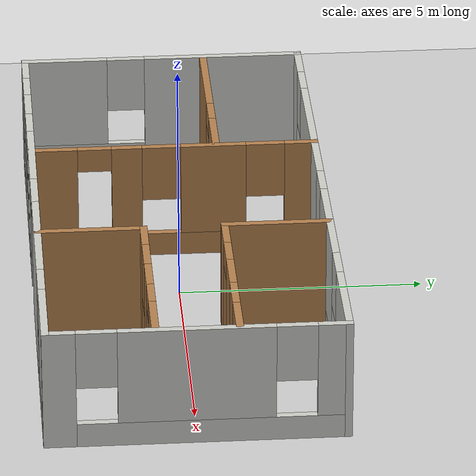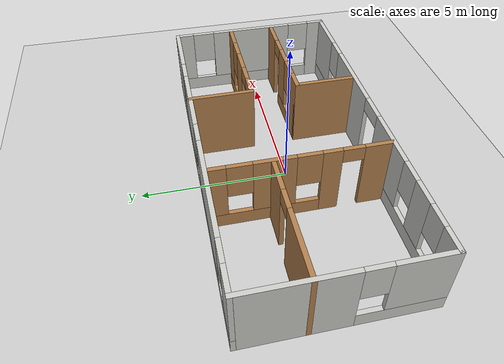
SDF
<sdf version="1.6">
 <world name="default">
  <plugin name="hello" filename="libhello.so"/>
  <light name="sun" type="directional">
   <pose>0 0 10 0 -0 0</pose>
   <diffuse>0.8 0.8 0.8 1</diffuse>
   <specular>0.2 0.2 0.2 1</specular>
   <attenuation>
    <range>1000</range>
    <constant>0.9</constant>
    <linear>0.01</linear>
    <quadratic>0.001</quadratic>
   </attenuation>
   <direction>-0.5 0.1 -0.9</direction>
  </light>
  <model name="ground_plane">
   <static>1</static>
   <link name="link">
    <collision name="collision">
     <geometry><plane><normal>0 0 1</normal><size>100 100</size></plane></geometry>
     <surface><friction><ode><mu>100</mu><mu2>50</mu2></ode></friction></surface>
    </collision>
    <visual name="visual">
     <cast_shadows>0</cast_shadows>
     <geometry><plane><normal>0 0 1</normal><size>100 100</size></plane></geometry>
     <material>
      <script><uri>file://media/materials/scripts/gazebo.material</uri><name>Gazebo/Grey</name></script>
     </material>
    </visual>
   </link>
  </model>
  <gravity>0 0 -9.8</gravity>
  <magnetic_field>6e-06 2.3e-05 -4.2e-05</magnetic_field>
  <atmosphere type="adiabatic"/>
  <physics name="default_physics" default="0" type="ode">
   <max_step_size>0.001</max_step_size>
   <real_time_factor>1</real_time_factor>
   <real_time_update_rate>1000</real_time_update_rate>
  </physics>
  <scene><ambient>0.4 0.4 0.4 1</ambient><background>0.7 0.7 0.7 1</background><shadows>1</shadows></scene>
  <spherical_coordinates>
   <surface_model>EARTH_WGS84</surface_model>
   <latitude_deg>0</latitude_deg>
   <longitude_deg>0</longitude_deg>
   <elevation>0</elevation>
   <heading_deg>0</heading_deg>
  </spherical_coordinates>
  <model name="house">
   <link name="Wall_10">
    <pose>-5.925 0 0 0 0 -1.5708</pose>
    <visual name="Wall_10_Visual_0">
     <pose>-1.31314 0 1.25 0 -0 0</pose>
     <geometry><box><size>3.37372 0.15 2.5</size></box></geometry>
     <material>
      <script><uri>file://media/materials/scripts/gazebo.material</uri><name>Gazebo/CeilingTiled</name></script>
      <ambient>1 1 1 1</ambient>
     </material>
     <meta><layer>0</layer></meta>
    </visual>
    <collision name="Wall_10_Collision_0">
     <geometry><box><size>3.37372 0.15 2.5</size></box></geometry>
     <pose>-1.31314 0 1.25 0 -0 0</pose>
    </collision>
    <visual name="Wall_10_Visual_1">
     <pose>1.68686 0 0.25 0 -0 0</pose>
     <geometry><box><size>2.62628 0.15 0.5</size></box></geometry>
     <material>
      <script><uri>file://media/materials/scripts/gazebo.material</uri><name>Gazebo/CeilingTiled</name></script>
      <ambient>1 1 1 1</ambient>
     </material>
     <meta><layer>0</layer></meta>
    </visual>
    <collision name="Wall_10_Collision_1">
     <geometry><box><size>2.62628 0.15 0.5</size></box></geometry>
     <pose>1.68686 0 0.25 0 -0 0</pose>
    </collision>
    <visual name="Wall_10_Visual_2">
     <pose>2.08686 0 1.5 0 -0 0</pose>
     <geometry><box><size>1.82628 0.15 2</size></box></geometry>
     <material>
      <script><uri>file://media/materials/scripts/gazebo.material</uri><name>Gazebo/CeilingTiled</name></script>
      <ambient>1 1 1 1</ambient>
     </material>
     <meta><layer>0</layer></meta>
    </visual>
    <collision name="Wall_10_Collision_2">
     <geometry><box><size>1.82628 0.15 2</size></box></geometry>
     <pose>2.08686 0 1.5 0 -0 0</pose>
    </collision>
    <visual name="Wall_10_Visual_3">
     <pose>0.773722 0 1.9 0 -0 0</pose>
     <geometry><box><size>0.8 0.15 1.2</size></box></geometry>
     <material>
      <script><uri>file://media/materials/scripts/gazebo.material</uri><name>Gazebo/CeilingTiled</name></script>
      <ambient>1 1 1 1</ambient>
     </material>
     <meta><layer>0</layer></meta>
    </visual>
    <collision name="Wall_10_Collision_3">
     <geometry><box><size>0.8 0.15 1.2</size></box></geometry>
     <pose>0.773722 0 1.9 0 -0 0</pose>
    </collision>
   </link>
   <link name="Wall_15">
    <pose>-1.74487 0 0 0 -0 1.5708</pose>
    <visual name="Wall_15_Visual_0">
     <pose>-2.49037 0 1.25 0 -0 0</pose>
     <geometry><box><size>1.01927 0.15 2.5</size></box></geometry>
     <material>
      <script><uri>file://media/materials/scripts/gazebo.material</uri><name>Gazebo/Wood</name></script>
      <ambient>1 1 1 1</ambient>
     </material>
     <meta><layer>0</layer></meta>
    </visual>
    <collision name="Wall_15_Collision_0">
     <geometry><box><size>1.01927 0.15 2.5</size></box></geometry>
     <pose>-2.49037 0 1.25 0 -0 0</pose>
    </collision>
    <visual name="Wall_15_Visual_1">
     <pose>-0.964878 0 1.25 0 -0 0</pose>
     <geometry><box><size>0.631715 0.15 2.5</size></box></geometry>
     <material>
      <script><uri>file://media/materials/scripts/gazebo.material</uri><name>Gazebo/Wood</name></script>
      <ambient>1 1 1 1</ambient>
     </material>
     <meta><layer>0</layer></meta>
    </visual>
    <collision name="Wall_15_Collision_1">
     <geometry><box><size>0.631715 0.15 2.5</size></box></geometry>
     <pose>-0.964878 0 1.25 0 -0 0</pose>
    </collision>
    <visual name="Wall_15_Visual_2">
     <pose>1.17549 0 0.25 0 -0 0</pose>
     <geometry><box><size>3.64902 0.15 0.5</size></box></geometry>
     <material>
      <script><uri>file://media/materials/scripts/gazebo.material</uri><name>Gazebo/Wood</name></script>
      <ambient>1 1 1 1</ambient>
     </material>
     <meta><layer>0</layer></meta>
    </visual>
    <collision name="Wall_15_Collision_2">
     <geometry><box><size>3.64902 0.15 0.5</size></box></geometry>
     <pose>1.17549 0 0.25 0 -0 0</pose>
    </collision>
    <visual name="Wall_15_Visual_3">
     <pose>0.826618 0 1.5 0 -0 0</pose>
     <geometry><box><size>1.35128 0.15 2</size></box></geometry>
     <material>
      <script><uri>file://media/materials/scripts/gazebo.material</uri><name>Gazebo/Wood</name></script>
      <ambient>1 1 1 1</ambient>
     </material>
     <meta><layer>0</layer></meta>
    </visual>
    <collision name="Wall_15_Collision_3">
     <geometry><box><size>1.35128 0.15 2</size></box></geometry>
     <pose>0.826618 0 1.5 0 -0 0</pose>
    </collision>
    <visual name="Wall_15_Visual_4">
     <pose>2.65113 0 1.5 0 -0 0</pose>
     <geometry><box><size>0.697743 0.15 2</size></box></geometry>
     <material>
      <script><uri>file://media/materials/scripts/gazebo.material</uri><name>Gazebo/Wood</name></script>
      <ambient>1 1 1 1</ambient>
     </material>
     <meta><layer>0</layer></meta>
    </visual>
    <collision name="Wall_15_Collision_4">
     <geometry><box><size>0.697743 0.15 2</size></box></geometry>
     <pose>2.65113 0 1.5 0 -0 0</pose>
    </collision>
    <visual name="Wall_15_Visual_5">
     <pose>-0.24902 0 1.9 0 -0 0</pose>
     <geometry><box><size>0.8 0.15 1.2</size></box></geometry>
     <material>
      <script><uri>file://media/materials/scripts/gazebo.material</uri><name>Gazebo/Wood</name></script>
      <ambient>1 1 1 1</ambient>
     </material>
     <meta><layer>0</layer></meta>
    </visual>
    <collision name="Wall_15_Collision_5">
     <geometry><box><size>0.8 0.15 1.2</size></box></geometry>
     <pose>-0.24902 0 1.9 0 -0 0</pose>
    </collision>
    <visual name="Wall_15_Visual_6">
     <pose>1.90226 0 1.9 0 -0 0</pose>
     <geometry><box><size>0.8 0.15 1.2</size></box></geometry>
     <material>
      <script><uri>file://media/materials/scripts/gazebo.material</uri><name>Gazebo/Wood</name></script>
      <ambient>1 1 1 1</ambient>
     </material>
     <meta><layer>0</layer></meta>
    </visual>
    <collision name="Wall_15_Collision_6">
     <geometry><box><size>0.8 0.15 1.2</size></box></geometry>
     <pose>1.90226 0 1.9 0 -0 0</pose>
    </collision>
    <visual name="Wall_15_Visual_7">
     <pose>-1.63074 0 2.25 0 -0 0</pose>
     <geometry><box><size>0.7 0.15 0.5</size></box></geometry>
     <material>
      <script><uri>file://media/materials/scripts/gazebo.material</uri><name>Gazebo/Wood</name></script>
      <ambient>1 1 1 1</ambient>
     </material>
     <meta><layer>0</layer></meta>
    </visual>
    <collision name="Wall_15_Collision_7">
     <geometry><box><size>0.7 0.15 0.5</size></box></geometry>
     <pose>-1.63074 0 2.25 0 -0 0</pose>
    </collision>
   </link>
   <link name="Wall_19">
    <pose>-3.875 0.887834 0 0 -0 0</pose>
    <visual name="Wall_19_Visual_0">
     <pose>-0.950745 0 1.25 0 -0 0</pose>
     <geometry><box><size>2.34851 0.15 2.5</size></box></geometry>
     <material>
      <script><uri>file://media/materials/scripts/gazebo.material</uri><name>Gazebo/Wood</name></script>
      <ambient>1 1 1 1</ambient>
     </material>
     <meta><layer>0</layer></meta>
    </visual>
    <collision name="Wall_19_Collision_0">
     <geometry><box><size>2.34851 0.15 2.5</size></box></geometry>
     <pose>-0.950745 0 1.25 0 -0 0</pose>
    </collision>
    <visual name="Wall_19_Visual_1">
     <pose>1.52425 0 1.25 0 -0 0</pose>
     <geometry><box><size>1.20149 0.15 2.5</size></box></geometry>
     <material>
      <script><uri>file://media/materials/scripts/gazebo.material</uri><name>Gazebo/Wood</name></script>
      <ambient>1 1 1 1</ambient>
     </material>
     <meta><layer>0</layer></meta>
    </visual>
    <collision name="Wall_19_Collision_1">
     <geometry><box><size>1.20149 0.15 2.5</size></box></geometry>
     <pose>1.52425 0 1.25 0 -0 0</pose>
    </collision>
    <visual name="Wall_19_Visual_2">
     <pose>0.573509 0 2.25 0 -0 0</pose>
     <geometry><box><size>0.7 0.15 0.5</size></box></geometry>
     <material>
      <script><uri>file://media/materials/scripts/gazebo.material</uri><name>Gazebo/Wood</name></script>
      <ambient>1 1 1 1</ambient>
     </material>
     <meta><layer>0</layer></meta>
    </visual>
    <collision name="Wall_19_Collision_2">
     <geometry><box><size>0.7 0.15 0.5</size></box></geometry>
     <pose>0.573509 0 2.25 0 -0 0</pose>
    </collision>
   </link>
   <link name="Wall_25">
    <collision name="Wall_25_Collision">
     <geometry><box><size>2.25 0.15 2.5</size></box></geometry>
     <pose>0 0 1.25 0 -0 0</pose>
    </collision>
    <visual name="Wall_25_Visual">
     <pose>0 0 1.25 0 -0 0</pose>
     <geometry><box><size>2.25 0.15 2.5</size></box></geometry>
     <material>
      <script><uri>file://media/materials/scripts/gazebo.material</uri><name>Gazebo/Wood</name></script>
      <ambient>1 1 1 1</ambient>
     </material>
     <meta><layer>0</layer></meta>
    </visual>
    <pose>1.78812 -1.85751 0 0 -0 1.5708</pose>
   </link>
   <link name="Wall_26">
    <pose>3.83812 -0.80751 0 0 -0 0</pose>
    <visual name="Wall_26_Visual_0">
     <pose>-1.73656 0 1.25 0 -0 0</pose>
     <geometry><box><size>0.776874 0.15 2.5</size></box></geometry>
     <material>
      <script><uri>file://media/materials/scripts/gazebo.material</uri><name>Gazebo/Wood</name></script>
      <ambient>1 1 1 1</ambient>
     </material>
     <meta><layer>0</layer></meta>
    </visual>
    <collision name="Wall_26_Collision_0">
     <geometry><box><size>0.776874 0.15 2.5</size></box></geometry>
     <pose>-1.73656 0 1.25 0 -0 0</pose>
    </collision>
    <visual name="Wall_26_Visual_1">
     <pose>1.55049 0 1.25 0 -0 0</pose>
     <geometry><box><size>1.14902 0.15 2.5</size></box></geometry>
     <material>
      <script><uri>file://media/materials/scripts/gazebo.material</uri><name>Gazebo/Wood</name></script>
      <ambient>1 1 1 1</ambient>
     </material>
     <meta><layer>0</layer></meta>
    </visual>
    <collision name="Wall_26_Collision_1">
     <geometry><box><size>1.14902 0.15 2.5</size></box></geometry>
     <pose>1.55049 0 1.25 0 -0 0</pose>
    </collision>
    <visual name="Wall_26_Visual_2">
     <pose>-0.536073 0 0.25 0 -0 0</pose>
     <geometry><box><size>1.62411 0.15 0.5</size></box></geometry>
     <material>
      <script><uri>file://media/materials/scripts/gazebo.material</uri><name>Gazebo/Wood</name></script>
      <ambient>1 1 1 1</ambient>
     </material>
     <meta><layer>0</layer></meta>
    </visual>
    <collision name="Wall_26_Collision_2">
     <geometry><box><size>1.62411 0.15 0.5</size></box></geometry>
     <pose>-0.536073 0 0.25 0 -0 0</pose>
    </collision>
    <visual name="Wall_26_Visual_3">
     <pose>-0.136073 0 1.5 0 -0 0</pose>
     <geometry><box><size>0.824106 0.15 2</size></box></geometry>
     <material>
      <script><uri>file://media/materials/scripts/gazebo.material</uri><name>Gazebo/Wood</name></script>
      <ambient>1 1 1 1</ambient>
     </material>
     <meta><layer>0</layer></meta>
    </visual>
    <collision name="Wall_26_Collision_3">
     <geometry><box><size>0.824106 0.15 2</size></box></geometry>
     <pose>-0.136073 0 1.5 0 -0 0</pose>
    </collision>
    <visual name="Wall_26_Visual_4">
     <pose>-0.948126 0 1.9 0 -0 0</pose>
     <geometry><box><size>0.8 0.15 1.2</size></box></geometry>
     <material>
      <script><uri>file://media/materials/scripts/gazebo.material</uri><name>Gazebo/Wood</name></script>
      <ambient>1 1 1 1</ambient>
     </material>
     <meta><layer>0</layer></meta>
    </visual>
    <collision name="Wall_26_Collision_4">
     <geometry><box><size>0.8 0.15 1.2</size></box></geometry>
     <pose>-0.948126 0 1.9 0 -0 0</pose>
    </collision>
    <visual name="Wall_26_Visual_5">
     <pose>0.625979 0 2.25 0 -0 0</pose>
     <geometry><box><size>0.7 0.15 0.5</size></box></geometry>
     <material>
      <script><uri>file://media/materials/scripts/gazebo.material</uri><name>Gazebo/Wood</name></script>
      <ambient>1 1 1 1</ambient>
     </material>
     <meta><layer>0</layer></meta>
    </visual>
    <collision name="Wall_26_Collision_5">
     <geometry><box><size>0.7 0.15 0.5</size></box></geometry>
     <pose>0.625979 0 2.25 0 -0 0</pose>
    </collision>
   </link>
   <link name="Wall_28">
    <collision name="Wall_28_Collision">
     <geometry><box><size>2.25 0.15 2.5</size></box></geometry>
     <pose>0 0 1.25 0 -0 0</pose>
    </collision>
    <visual name="Wall_28_Visual">
     <pose>0 0 1.25 0 -0 0</pose>
     <geometry><box><size>2.25 0.15 2.5</size></box></geometry>
     <material>
      <script><uri>file://media/materials/scripts/gazebo.material</uri><name>Gazebo/Wood</name></script>
      <ambient>1 1 1 1</ambient>
     </material>
     <meta><layer>0</layer></meta>
    </visual>
    <pose>1.75314 1.86668 0 0 0 -1.5708</pose>
   </link>
   <link name="Wall_29">
    <pose>3.80314 0.816681 0 0 -0 0</pose>
    <visual name="Wall_29_Visual_0">
     <pose>-1.70282 0 1.25 0 -0 0</pose>
     <geometry><box><size>0.844364 0.15 2.5</size></box></geometry>
     <material>
      <script><uri>file://media/materials/scripts/gazebo.material</uri><name>Gazebo/Wood</name></script>
      <ambient>1 1 1 1</ambient>
     </material>
     <meta><layer>0</layer></meta>
    </visual>
    <collision name="Wall_29_Collision_0">
     <geometry><box><size>0.844364 0.15 2.5</size></box></geometry>
     <pose>-1.70282 0 1.25 0 -0 0</pose>
    </collision>
    <visual name="Wall_29_Visual_1">
     <pose>-0.107368 0 1.25 0 -0 0</pose>
     <geometry><box><size>0.946536 0.15 2.5</size></box></geometry>
     <material>
      <script><uri>file://media/materials/scripts/gazebo.material</uri><name>Gazebo/Wood</name></script>
      <ambient>1 1 1 1</ambient>
     </material>
     <meta><layer>0</layer></meta>
    </visual>
    <collision name="Wall_29_Collision_1">
     <geometry><box><size>0.946536 0.15 2.5</size></box></geometry>
     <pose>-0.107368 0 1.25 0 -0 0</pose>
    </collision>
    <visual name="Wall_29_Visual_2">
     <pose>1.24545 0 0.25 0 -0 0</pose>
     <geometry><box><size>1.7591 0.15 0.5</size></box></geometry>
     <material>
      <script><uri>file://media/materials/scripts/gazebo.material</uri><name>Gazebo/Wood</name></script>
      <ambient>1 1 1 1</ambient>
     </material>
     <meta><layer>0</layer></meta>
    </visual>
    <collision name="Wall_29_Collision_2">
     <geometry><box><size>1.7591 0.15 0.5</size></box></geometry>
     <pose>1.24545 0 0.25 0 -0 0</pose>
    </collision>
    <visual name="Wall_29_Visual_3">
     <pose>1.64545 0 1.5 0 -0 0</pose>
     <geometry><box><size>0.9591 0.15 2</size></box></geometry>
     <material>
      <script><uri>file://media/materials/scripts/gazebo.material</uri><name>Gazebo/Wood</name></script>
      <ambient>1 1 1 1</ambient>
     </material>
     <meta><layer>0</layer></meta>
    </visual>
    <collision name="Wall_29_Collision_3">
     <geometry><box><size>0.9591 0.15 2</size></box></geometry>
     <pose>1.64545 0 1.5 0 -0 0</pose>
    </collision>
    <visual name="Wall_29_Visual_4">
     <pose>0.7659 0 1.9 0 -0 0</pose>
     <geometry><box><size>0.8 0.15 1.2</size></box></geometry>
     <material>
      <script><uri>file://media/materials/scripts/gazebo.material</uri><name>Gazebo/Wood</name></script>
      <ambient>1 1 1 1</ambient>
     </material>
     <meta><layer>0</layer></meta>
    </visual>
    <collision name="Wall_29_Collision_4">
     <geometry><box><size>0.8 0.15 1.2</size></box></geometry>
     <pose>0.7659 0 1.9 0 -0 0</pose>
    </collision>
    <visual name="Wall_29_Visual_5">
     <pose>-0.930636 0 2.25 0 -0 0</pose>
     <geometry><box><size>0.7 0.15 0.5</size></box></geometry>
     <material>
      <script><uri>file://media/materials/scripts/gazebo.material</uri><name>Gazebo/Wood</name></script>
      <ambient>1 1 1 1</ambient>
     </material>
     <meta><layer>0</layer></meta>
    </visual>
    <collision name="Wall_29_Collision_5">
     <geometry><box><size>0.7 0.15 0.5</size></box></geometry>
     <pose>-0.930636 0 2.25 0 -0 0</pose>
    </collision>
   </link>
   <link name="Wall_7">
    <pose>0 -2.925 0 0 -0 0</pose>
    <visual name="Wall_7_Visual_0">
     <pose>-5.56784 0 1.25 0 -0 0</pose>
     <geometry><box><size>0.864324 0.15 2.5</size></box></geometry>
     <material>
      <script><uri>file://media/materials/scripts/gazebo.material</uri><name>Gazebo/CeilingTiled</name></script>
      <ambient>1 1 1 1</ambient>
     </material>
     <meta><layer>0</layer></meta>
    </visual>
    <collision name="Wall_7_Collision_0">
     <geometry><box><size>0.864324 0.15 2.5</size></box></geometry>
     <pose>-5.56784 0 1.25 0 -0 0</pose>
    </collision>
    <visual name="Wall_7_Visual_1">
     <pose>1.93431 0 1.25 0 -0 0</pose>
     <geometry><box><size>2.86036 0.15 2.5</size></box></geometry>
     <material>
      <script><uri>file://media/materials/scripts/gazebo.material</uri><name>Gazebo/CeilingTiled</name></script>
      <ambient>1 1 1 1</ambient>
     </material>
     <meta><layer>0</layer></meta>
    </visual>
    <collision name="Wall_7_Collision_1">
     <geometry><box><size>2.86036 0.15 2.5</size></box></geometry>
     <pose>1.93431 0 1.25 0 -0 0</pose>
    </collision>
    <visual name="Wall_7_Visual_2">
     <pose>-2.81577 0 0.25 0 -0 0</pose>
     <geometry><box><size>4.63981 0.15 0.5</size></box></geometry>
     <material>
      <script><uri>file://media/materials/scripts/gazebo.material</uri><name>Gazebo/CeilingTiled</name></script>
      <ambient>1 1 1 1</ambient>
     </material>
     <meta><layer>0</layer></meta>
    </visual>
    <collision name="Wall_7_Collision_2">
     <geometry><box><size>4.63981 0.15 0.5</size></box></geometry>
     <pose>-2.81577 0 0.25 0 -0 0</pose>
    </collision>
    <visual name="Wall_7_Visual_3">
     <pose>4.68225 0 0.25 0 -0 0</pose>
     <geometry><box><size>2.63551 0.15 0.5</size></box></geometry>
     <material>
      <script><uri>file://media/materials/scripts/gazebo.material</uri><name>Gazebo/CeilingTiled</name></script>
      <ambient>1 1 1 1</ambient>
     </material>
     <meta><layer>0</layer></meta>
    </visual>
    <collision name="Wall_7_Collision_3">
     <geometry><box><size>2.63551 0.15 0.5</size></box></geometry>
     <pose>4.68225 0 0.25 0 -0 0</pose>
    </collision>
    <visual name="Wall_7_Visual_4">
     <pose>-3.88741 0 1.5 0 -0 0</pose>
     <geometry><box><size>0.896536 0.15 2</size></box></geometry>
     <material>
      <script><uri>file://media/materials/scripts/gazebo.material</uri><name>Gazebo/CeilingTiled</name></script>
      <ambient>1 1 1 1</ambient>
     </material>
     <meta><layer>0</layer></meta>
    </visual>
    <collision name="Wall_7_Collision_4">
     <geometry><box><size>0.896536 0.15 2</size></box></geometry>
     <pose>-3.88741 0 1.5 0 -0 0</pose>
    </collision>
    <visual name="Wall_7_Visual_5">
     <pose>-1.5675 0 1.5 0 -0 0</pose>
     <geometry><box><size>2.14327 0.15 2</size></box></geometry>
     <material>
      <script><uri>file://media/materials/scripts/gazebo.material</uri><name>Gazebo/CeilingTiled</name></script>
      <ambient>1 1 1 1</ambient>
     </material>
     <meta><layer>0</layer></meta>
    </visual>
    <collision name="Wall_7_Collision_5">
     <geometry><box><size>2.14327 0.15 2</size></box></geometry>
     <pose>-1.5675 0 1.5 0 -0 0</pose>
    </collision>
    <visual name="Wall_7_Visual_6">
     <pose>-1.5675 0 1.5 0 -0 0</pose>
     <geometry><box><size>2.14327 0.15 2</size></box></geometry>
     <material>
      <script><uri>file://media/materials/scripts/gazebo.material</uri><name>Gazebo/CeilingTiled</name></script>
      <ambient>1 1 1 1</ambient>
     </material>
     <meta><layer>0</layer></meta>
    </visual>
    <collision name="Wall_7_Collision_6">
     <geometry><box><size>2.14327 0.15 2</size></box></geometry>
     <pose>-1.5675 0 1.5 0 -0 0</pose>
    </collision>
    <visual name="Wall_7_Visual_7">
     <pose>5.08225 0 1.5 0 -0 0</pose>
     <geometry><box><size>1.8355 0.15 2</size></box></geometry>
     <material>
      <script><uri>file://media/materials/scripts/gazebo.material</uri><name>Gazebo/CeilingTiled</name></script>
      <ambient>1 1 1 1</ambient>
     </material>
     <meta><layer>0</layer></meta>
    </visual>
    <collision name="Wall_7_Collision_7">
     <geometry><box><size>1.8355 0.15 2</size></box></geometry>
     <pose>5.08225 0 1.5 0 -0 0</pose>
    </collision>
    <visual name="Wall_7_Visual_8">
     <pose>-4.73568 0 1.9 0 -0 0</pose>
     <geometry><box><size>0.8 0.15 1.2</size></box></geometry>
     <material>
      <script><uri>file://media/materials/scripts/gazebo.material</uri><name>Gazebo/CeilingTiled</name></script>
      <ambient>1 1 1 1</ambient>
     </material>
     <meta><layer>0</layer></meta>
    </visual>
    <collision name="Wall_7_Collision_8">
     <geometry><box><size>0.8 0.15 1.2</size></box></geometry>
     <pose>-4.73568 0 1.9 0 -0 0</pose>
    </collision>
    <visual name="Wall_7_Visual_9">
     <pose>3.7645 0 1.9 0 -0 0</pose>
     <geometry><box><size>0.8 0.15 1.2</size></box></geometry>
     <material>
      <script><uri>file://media/materials/scripts/gazebo.material</uri><name>Gazebo/CeilingTiled</name></script>
      <ambient>1 1 1 1</ambient>
     </material>
     <meta><layer>0</layer></meta>
    </visual>
    <collision name="Wall_7_Collision_9">
     <geometry><box><size>0.8 0.15 1.2</size></box></geometry>
     <pose>3.7645 0 1.9 0 -0 0</pose>
    </collision>
    <visual name="Wall_7_Visual_10">
     <pose>-3.03914 0 1.9 0 -0 0</pose>
     <geometry><box><size>0.8 0.15 1.2</size></box></geometry>
     <material>
      <script><uri>file://media/materials/scripts/gazebo.material</uri><name>Gazebo/CeilingTiled</name></script>
      <ambient>1 1 1 1</ambient>
     </material>
     <meta><layer>0</layer></meta>
    </visual>
    <collision name="Wall_7_Collision_10">
     <geometry><box><size>0.8 0.15 1.2</size></box></geometry>
     <pose>-3.03914 0 1.9 0 -0 0</pose>
    </collision>
    <visual name="Wall_7_Visual_11">
     <pose>0.004131 0 2.25 0 -0 0</pose>
     <geometry><box><size>1 0.15 0.5</size></box></geometry>
     <material>
      <script><uri>file://media/materials/scripts/gazebo.material</uri><name>Gazebo/CeilingTiled</name></script>
      <ambient>1 1 1 1</ambient>
     </material>
     <meta><layer>0</layer></meta>
    </visual>
    <collision name="Wall_7_Collision_11">
     <geometry><box><size>1 0.15 0.5</size></box></geometry>
     <pose>0.004131 0 2.25 0 -0 0</pose>
    </collision>
    <visual name="Wall_7_Visual_12">
     <pose>0.004131 0 2.25 0 -0 0</pose>
     <geometry><box><size>1 0.15 0.5</size></box></geometry>
     <material>
      <script><uri>file://media/materials/scripts/gazebo.material</uri><name>Gazebo/CeilingTiled</name></script>
      <ambient>1 1 1 1</ambient>
     </material>
     <meta><layer>0</layer></meta>
    </visual>
    <collision name="Wall_7_Collision_12">
     <geometry><box><size>1 0.15 0.5</size></box></geometry>
     <pose>0.004131 0 2.25 0 -0 0</pose>
    </collision>
   </link>
   <link name="Wall_8">
    <pose>5.925 0 0 0 -0 1.5708</pose>
    <visual name="Wall_8_Visual_0">
     <pose>-2.67278 0 1.25 0 -0 0</pose>
     <geometry><box><size>0.654444 0.15 2.5</size></box></geometry>
     <material>
      <script><uri>file://media/materials/scripts/gazebo.material</uri><name>Gazebo/CeilingTiled</name></script>
      <ambient>1 1 1 1</ambient>
     </material>
     <meta><layer>0</layer></meta>
    </visual>
    <collision name="Wall_8_Collision_0">
     <geometry><box><size>0.654444 0.15 2.5</size></box></geometry>
     <pose>-2.67278 0 1.25 0 -0 0</pose>
    </collision>
    <visual name="Wall_8_Visual_1">
     <pose>0.327222 0 0.25 0 -0 0</pose>
     <geometry><box><size>5.34556 0.15 0.5</size></box></geometry>
     <material>
      <script><uri>file://media/materials/scripts/gazebo.material</uri><name>Gazebo/CeilingTiled</name></script>
      <ambient>1 1 1 1</ambient>
     </material>
     <meta><layer>0</layer></meta>
    </visual>
    <collision name="Wall_8_Collision_1">
     <geometry><box><size>5.34556 0.15 0.5</size></box></geometry>
     <pose>0.327222 0 0.25 0 -0 0</pose>
    </collision>
    <visual name="Wall_8_Visual_2">
     <pose>-0.012905 0 1.5 0 -0 0</pose>
     <geometry><box><size>3.0653 0.15 2</size></box></geometry>
     <material>
      <script><uri>file://media/materials/scripts/gazebo.material</uri><name>Gazebo/CeilingTiled</name></script>
      <ambient>1 1 1 1</ambient>
     </material>
     <meta><layer>0</layer></meta>
    </visual>
    <collision name="Wall_8_Collision_2">
     <geometry><box><size>3.0653 0.15 2</size></box></geometry>
     <pose>-0.012905 0 1.5 0 -0 0</pose>
    </collision>
    <visual name="Wall_8_Visual_3">
     <pose>2.65987 0 1.5 0 -0 0</pose>
     <geometry><box><size>0.680253 0.15 2</size></box></geometry>
     <material>
      <script><uri>file://media/materials/scripts/gazebo.material</uri><name>Gazebo/CeilingTiled</name></script>
      <ambient>1 1 1 1</ambient>
     </material>
     <meta><layer>0</layer></meta>
    </visual>
    <collision name="Wall_8_Collision_3">
     <geometry><box><size>0.680253 0.15 2</size></box></geometry>
     <pose>2.65987 0 1.5 0 -0 0</pose>
    </collision>
    <visual name="Wall_8_Visual_4">
     <pose>-1.94556 0 1.9 0 -0 0</pose>
     <geometry><box><size>0.8 0.15 1.2</size></box></geometry>
     <material>
      <script><uri>file://media/materials/scripts/gazebo.material</uri><name>Gazebo/CeilingTiled</name></script>
      <ambient>1 1 1 1</ambient>
     </material>
     <meta><layer>0</layer></meta>
    </visual>
    <collision name="Wall_8_Collision_4">
     <geometry><box><size>0.8 0.15 1.2</size></box></geometry>
     <pose>-1.94556 0 1.9 0 -0 0</pose>
    </collision>
    <visual name="Wall_8_Visual_5">
     <pose>1.91975 0 1.9 0 -0 0</pose>
     <geometry><box><size>0.8 0.15 1.2</size></box></geometry>
     <material>
      <script><uri>file://media/materials/scripts/gazebo.material</uri><name>Gazebo/CeilingTiled</name></script>
      <ambient>1 1 1 1</ambient>
     </material>
     <meta><layer>0</layer></meta>
    </visual>
    <collision name="Wall_8_Collision_5">
     <geometry><box><size>0.8 0.15 1.2</size></box></geometry>
     <pose>1.91975 0 1.9 0 -0 0</pose>
    </collision>
   </link>
   <link name="Wall_9">
    <pose>0 2.925 0 0 -0 3.14159</pose>
    <visual name="Wall_9_Visual_0">
     <pose>-4.95107 0 1.25 0 -0 0</pose>
     <geometry><box><size>2.09786 0.15 2.5</size></box></geometry>
     <material>
      <script><uri>file://media/materials/scripts/gazebo.material</uri><name>Gazebo/CeilingTiled</name></script>
      <ambient>1 1 1 1</ambient>
     </material>
     <meta><layer>0</layer></meta>
    </visual>
    <collision name="Wall_9_Collision_0">
     <geometry><box><size>2.09786 0.15 2.5</size></box></geometry>
     <pose>-4.95107 0 1.25 0 -0 0</pose>
    </collision>
    <visual name="Wall_9_Visual_1">
     <pose>1.04893 0 0.25 0 -0 0</pose>
     <geometry><box><size>9.90214 0.15 0.5</size></box></geometry>
     <material>
      <script><uri>file://media/materials/scripts/gazebo.material</uri><name>Gazebo/CeilingTiled</name></script>
      <ambient>1 1 1 1</ambient>
     </material>
     <meta><layer>0</layer></meta>
    </visual>
    <collision name="Wall_9_Collision_1">
     <geometry><box><size>9.90214 0.15 0.5</size></box></geometry>
     <pose>1.04893 0 0.25 0 -0 0</pose>
    </collision>
    <visual name="Wall_9_Visual_2">
     <pose>-1.74439 0 1.5 0 -0 0</pose>
     <geometry><box><size>2.7155 0.15 2</size></box></geometry>
     <material>
      <script><uri>file://media/materials/scripts/gazebo.material</uri><name>Gazebo/CeilingTiled</name></script>
      <ambient>1 1 1 1</ambient>
     </material>
     <meta><layer>0</layer></meta>
    </visual>
    <collision name="Wall_9_Collision_2">
     <geometry><box><size>2.7155 0.15 2</size></box></geometry>
     <pose>-1.74439 0 1.5 0 -0 0</pose>
    </collision>
    <visual name="Wall_9_Visual_3">
     <pose>2.3133 0 1.5 0 -0 0</pose>
     <geometry><box><size>3.79989 0.15 2</size></box></geometry>
     <material>
      <script><uri>file://media/materials/scripts/gazebo.material</uri><name>Gazebo/CeilingTiled</name></script>
      <ambient>1 1 1 1</ambient>
     </material>
     <meta><layer>0</layer></meta>
    </visual>
    <collision name="Wall_9_Collision_3">
     <geometry><box><size>3.79989 0.15 2</size></box></geometry>
     <pose>2.3133 0 1.5 0 -0 0</pose>
    </collision>
    <visual name="Wall_9_Visual_4">
     <pose>5.50662 0 1.5 0 -0 0</pose>
     <geometry><box><size>0.986755 0.15 2</size></box></geometry>
     <material>
      <script><uri>file://media/materials/scripts/gazebo.material</uri><name>Gazebo/CeilingTiled</name></script>
      <ambient>1 1 1 1</ambient>
     </material>
     <meta><layer>0</layer></meta>
    </visual>
    <collision name="Wall_9_Collision_4">
     <geometry><box><size>0.986755 0.15 2</size></box></geometry>
     <pose>5.50662 0 1.5 0 -0 0</pose>
    </collision>
    <visual name="Wall_9_Visual_5">
     <pose>-3.50214 0 1.9 0 -0 0</pose>
     <geometry><box><size>0.8 0.15 1.2</size></box></geometry>
     <material>
      <script><uri>file://media/materials/scripts/gazebo.material</uri><name>Gazebo/CeilingTiled</name></script>
      <ambient>1 1 1 1</ambient>
     </material>
     <meta><layer>0</layer></meta>
    </visual>
    <collision name="Wall_9_Collision_5">
     <geometry><box><size>0.8 0.15 1.2</size></box></geometry>
     <pose>-3.50214 0 1.9 0 -0 0</pose>
    </collision>
    <visual name="Wall_9_Visual_6">
     <pose>0.013359 0 1.9 0 -0 0</pose>
     <geometry><box><size>0.8 0.15 1.2</size></box></geometry>
     <material>
      <script><uri>file://media/materials/scripts/gazebo.material</uri><name>Gazebo/CeilingTiled</name></script>
      <ambient>1 1 1 1</ambient>
     </material>
     <meta><layer>0</layer></meta>
    </visual>
    <collision name="Wall_9_Collision_6">
     <geometry><box><size>0.8 0.15 1.2</size></box></geometry>
     <pose>0.013359 0 1.9 0 -0 0</pose>
    </collision>
    <visual name="Wall_9_Visual_7">
     <pose>4.61325 0 1.9 0 -0 0</pose>
     <geometry><box><size>0.8 0.15 1.2</size></box></geometry>
     <material>
      <script><uri>file://media/materials/scripts/gazebo.material</uri><name>Gazebo/CeilingTiled</name></script>
      <ambient>1 1 1 1</ambient>
     </material>
     <meta><layer>0</layer></meta>
    </visual>
    <collision name="Wall_9_Collision_7">
     <geometry><box><size>0.8 0.15 1.2</size></box></geometry>
     <pose>4.61325 0 1.9 0 -0 0</pose>
    </collision>
   </link>
   <static>1</static>
  </model>
  <model name="beer">
   <link name="link">
    <pose>0 0 0.115 0 -0 0</pose>
    <inertial>
     <mass>0.39</mass>
     <inertia><ixx>0.00058</ixx><ixy>0</ixy><ixz>0</ixz><iyy>0.00058</iyy><iyz>0</iyz><izz>0.00019</izz></inertia>
    </inertial>
    <collision name="collision">
     <geometry><cylinder><radius>0.055</radius><length>0.23</length></cylinder></geometry>
    </collision>
    <visual name="visual">
     <geometry><cylinder><radius>0.055</radius><length>0.23</length></cylinder></geometry>
     <material>
      <script>
       <uri>model://beer/materials/scripts</uri>
       <uri>model://beer/materials/textures</uri>
       <name>Beer/Diffuse</name>
      </script>
     </material>
    </visual>
   </link>
   <pose>-0.677846 1.19818 0.774992 1e-06 -2.7e-05 0.001144</pose>
  </model>
 </world>
</sdf>
